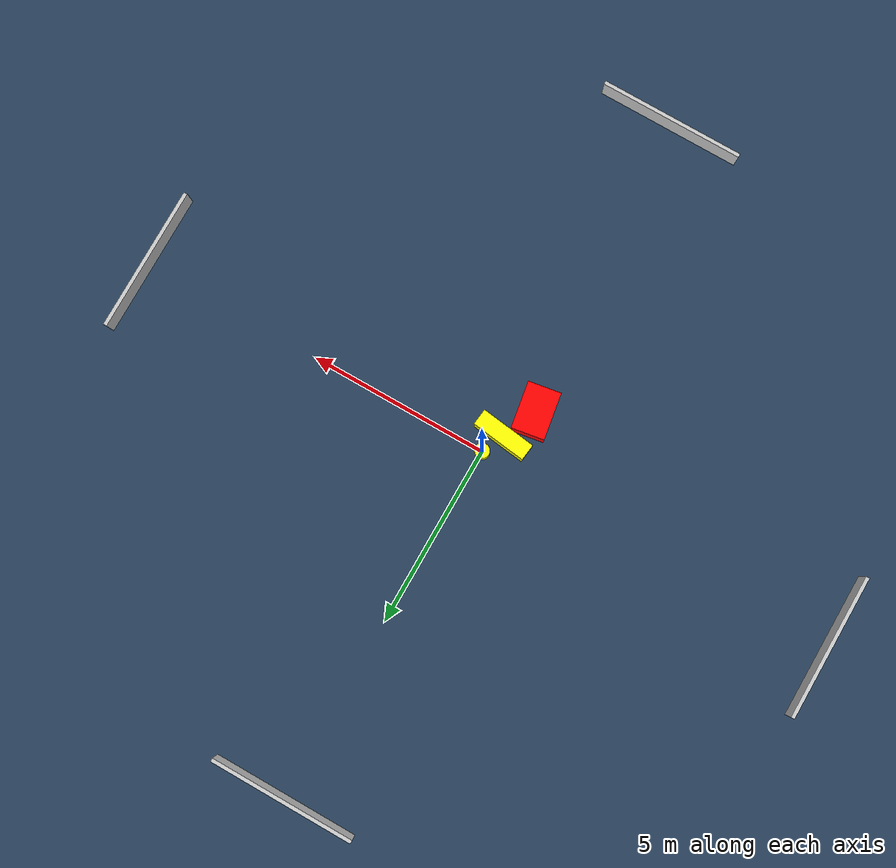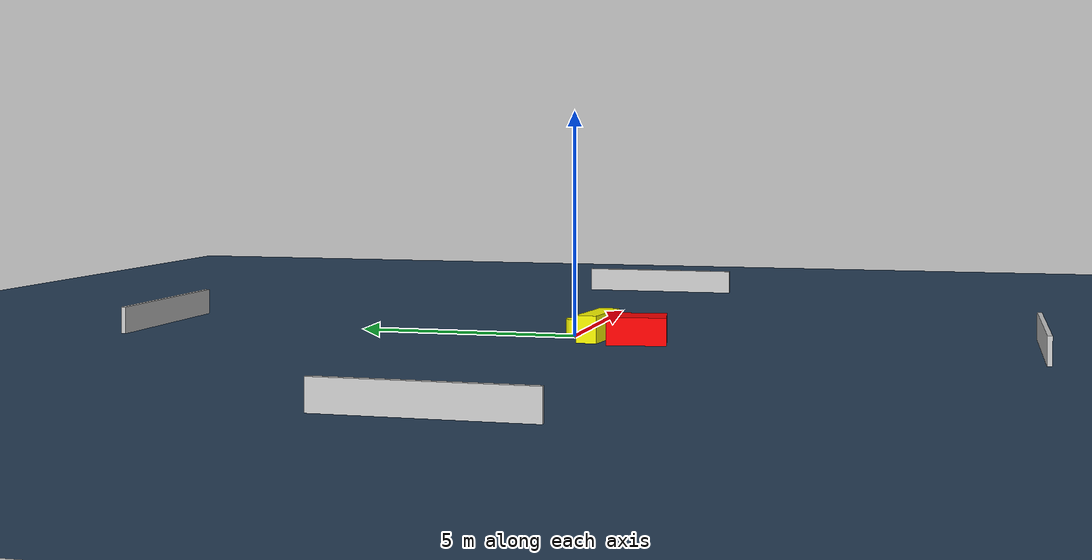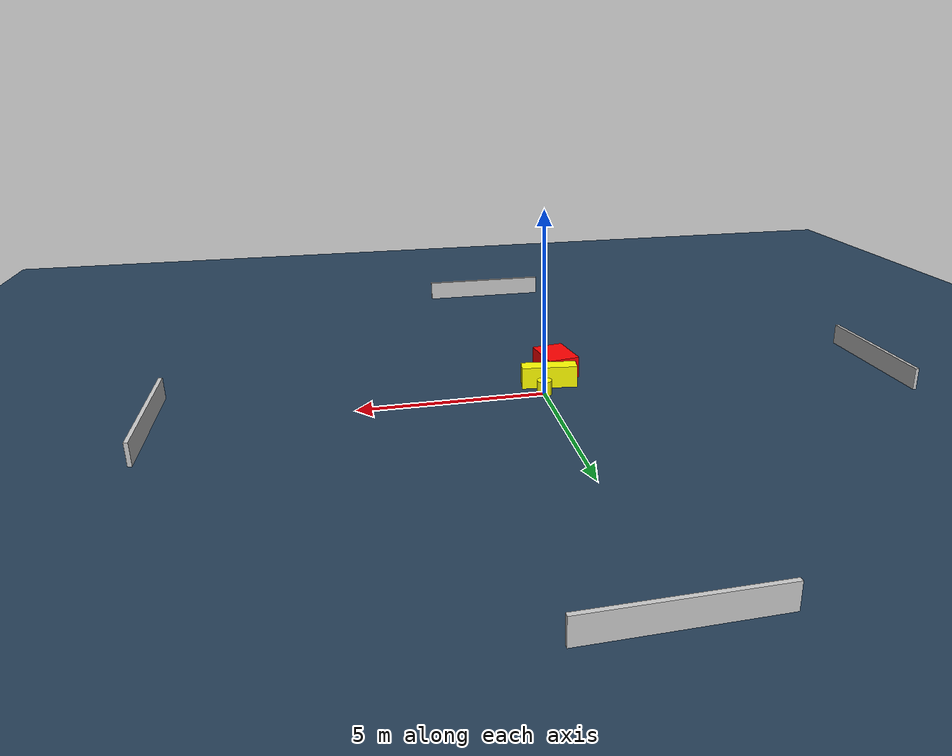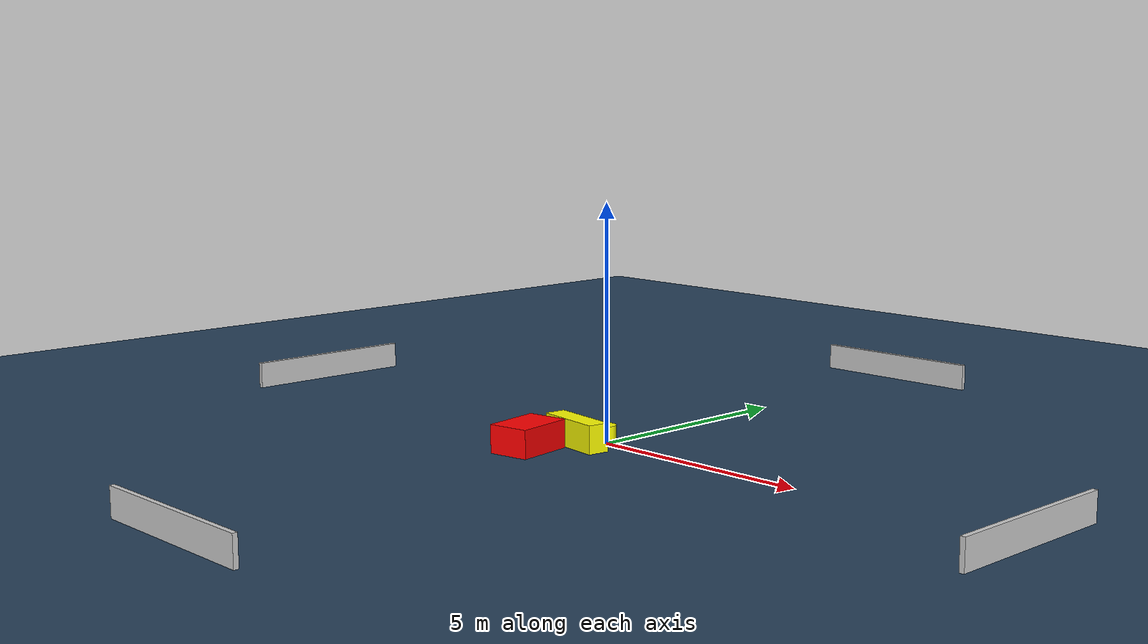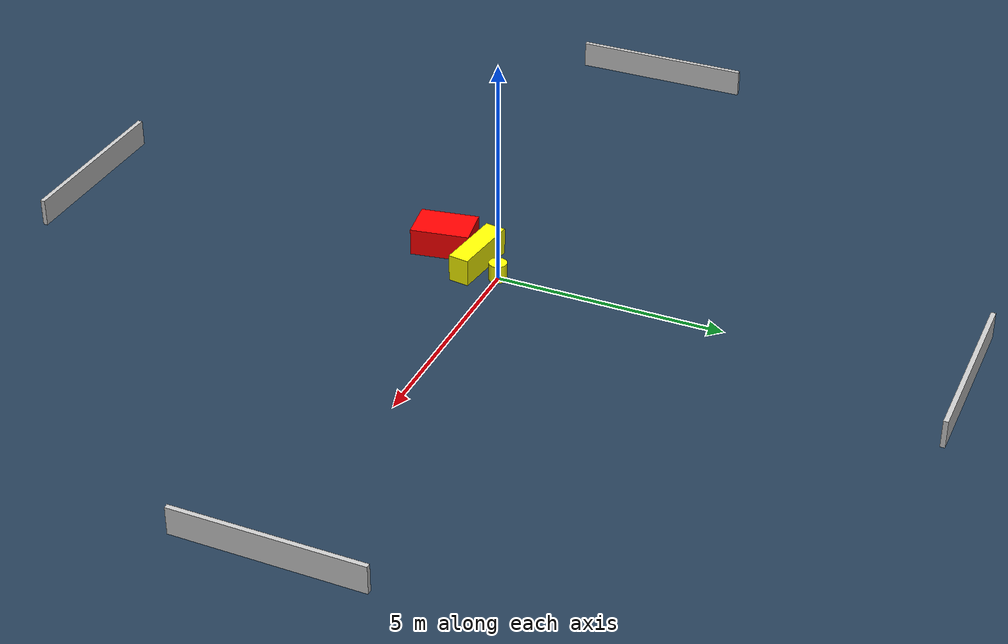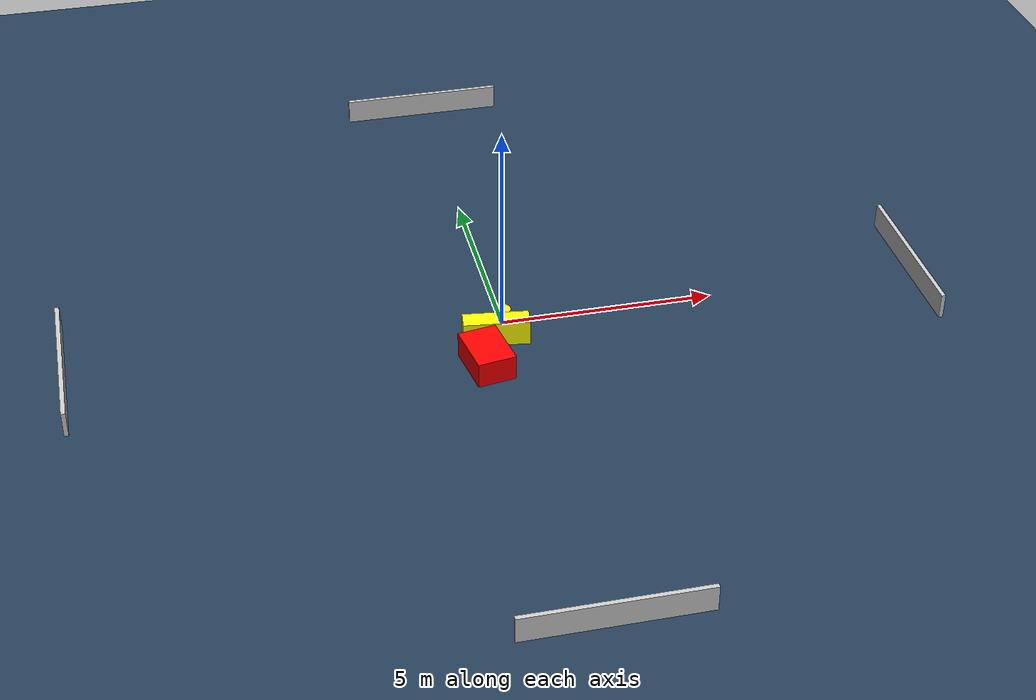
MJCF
<?xml version="1.0" ?>
<mujoco model="generated_environment">
  <option timestep="0.01" integrator="RK4" cone="elliptic"/>
  <default>
    <geom density="1"/>
  </default>
  <asset>
    <texture builtin="gradient" height="3072" name="skybox" rgb1="0.3 0.5 0.7" rgb2="0 0 0" type="skybox" width="512"/>
    <texture builtin="checker" height="300" name="groundplane" rgb1="0.2 0.3 0.4" rgb2="0.1 0.2 0.3" type="2d" width="300"/>
    <material name="groundplane" reflectance="0.2" texrepeat="5 5" texture="groundplane"/>
  </asset>
  <worldbody>
    <light dir="0 0 -1" directional="true" pos="0 0 1.5"/>
    <geom condim="3" friction="0.5 0.005 0.001" material="groundplane" name="floor" pos="0 0 0" size="0 0 0.05" type="plane"/>
    <body name="walls">
      <geom name="wall_1" condim="4" pos="-10.0 0.0 0.3" rgba="0.800000011920929 0.800000011920929 0.800000011920929 1.0" size="0.05 2.0 0.3" type="box"/>
      <geom name="wall_2" condim="4" pos="10.0 0.0 0.3" rgba="0.800000011920929 0.800000011920929 0.800000011920929 1.0" size="0.05 2.0 0.3" type="box"/>
      <geom name="wall_3" condim="4" pos="0.0 -10.0 0.3" rgba="0.800000011920929 0.800000011920929 0.800000011920929 1.0" size="2.0 0.05 0.3" type="box"/>
      <geom name="wall_4" condim="4" pos="0.0 10.0 0.3" rgba="0.800000011920929 0.800000011920929 0.800000011920929 1.0" size="2.0 0.05 0.3" type="box"/>
    </body>
    <body name="robot">
      <joint name="joint_x" type="slide" pos="0 0 0" axis="1 0 0"/>
      <joint name="joint_y" type="slide" pos="0 0 0" axis="0 1 0"/>
      <geom name="robot" type="cylinder" pos="0.0 0.0 0.2" size="0.2 0.2 0.0" mass="5.0" friction="1.0 0.005 0.0001" condim="4" rgba="1.0 1.0 0.0 1.0"/>
    </body>
    <body name="obstacle_1_movable">
      <geom name="obstacle_1_movable" condim="4" pos="-0.2733173119812487 -0.6037207769726615 0.3" euler="0 0 82.79949598685897" friction="0.0 0.005 0.001" rgba="1.0 1.0 0.0 1.0" size="0.22779368824701196 0.7636164006236461 0.3" type="box" mass="0.1"/>
      <joint type="free"/>
    </body>
    <body name="obstacle_2_static">
      <geom name="obstacle_2_static" condim="4" pos="-0.6937006496321284 -1.5565536648412697 0.3" euler="0 0 189.26711869875965" friction="0.0 0.005 0.001" rgba="1.0 0.0 0.0 1.0" size="0.4519053636294606 0.6425015292942005 0.3" type="box"/>
    </body>
  </worldbody>
  <actuator>
    <motor name="actuator_x" joint="joint_x" gear="1" ctrlrange="-1 1"/>
    <motor name="actuator_y" joint="joint_y" gear="1" ctrlrange="-1 1"/>
  </actuator>
</mujoco>
